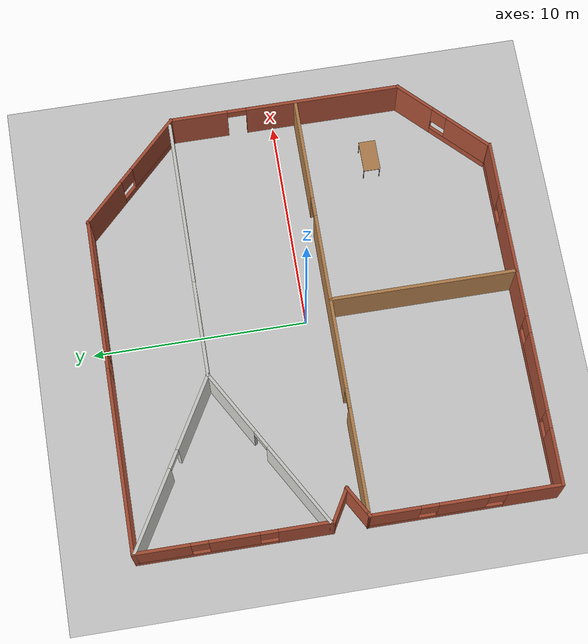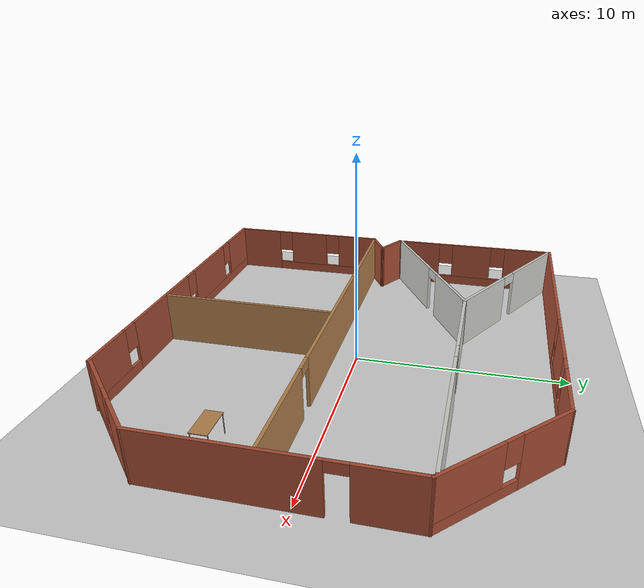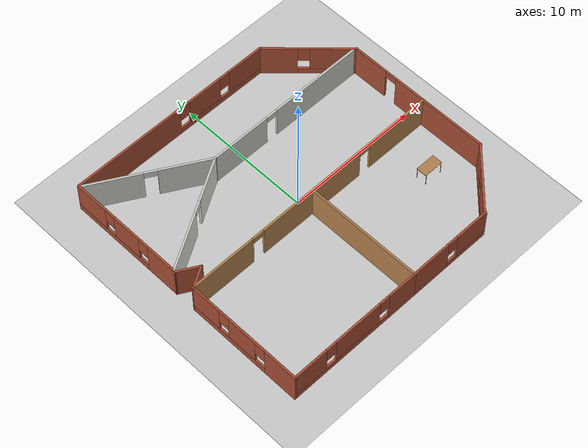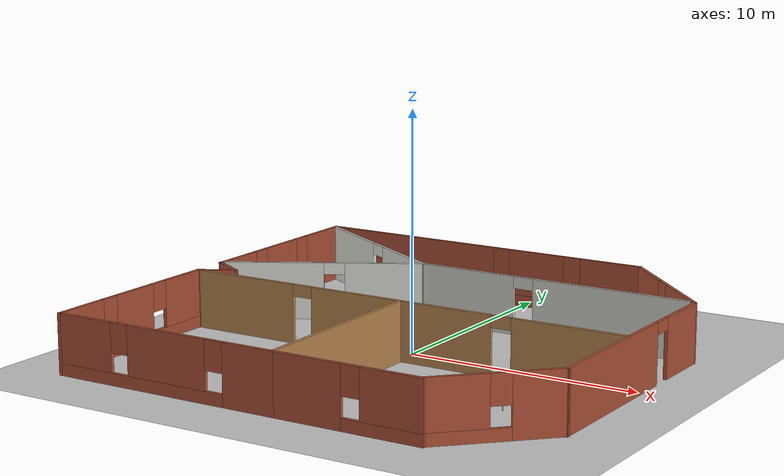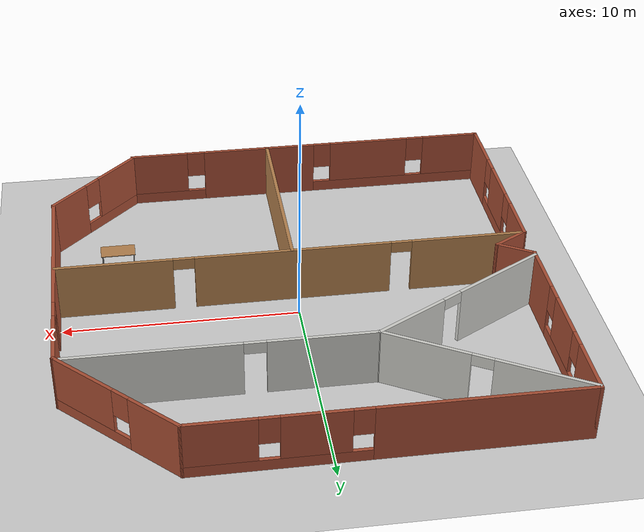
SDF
<sdf version="1.6">
 <world name="myworld">
  <model name="ground_plane">
   <static>1</static>
   <link name="link">
    <collision name="collision">
     <geometry><plane><normal>0 0 1</normal><size>100 100</size></plane></geometry>
     <surface><friction><ode><mu>100</mu><mu2>50</mu2></ode></friction></surface>
    </collision>
    <visual name="visual">
     <cast_shadows>0</cast_shadows>
     <geometry><plane><normal>0 0 1</normal><size>100 100</size></plane></geometry>
     <material>
      <script><uri>file://media/materials/scripts/gazebo.material</uri><name>Gazebo/Grey</name></script>
     </material>
    </visual>
   </link>
  </model>
  <model name="hy_0">
   <pose>0.09983 -0.23319 0 0 -0 0</pose>
   <link name="Wall_12">
    <pose>-6.30136 2.96516 0 0 -0 0.523599</pose>
    <visual name="Wall_12_Visual_0">
     <pose>-2.17493 0 1.25 0 -0 0</pose>
     <geometry><box><size>4.40014 0.15 2.5</size></box></geometry>
     <material>
      <script><uri>file://media/materials/scripts/gazebo.material</uri><name>Gazebo/CeilingTiled</name></script>
      <ambient>0 0.92549 0 1</ambient>
     </material>
     <meta><layer>0</layer></meta>
    </visual>
    <collision name="Wall_12_Collision_0">
     <geometry><box><size>4.40014 0.15 2.5</size></box></geometry>
     <pose>-2.17493 0 1.25 0 -0 0</pose>
    </collision>
    <visual name="Wall_12_Visual_1">
     <pose>2.65007 0 1.25 0 -0 0</pose>
     <geometry><box><size>3.44986 0.15 2.5</size></box></geometry>
     <material>
      <script><uri>file://media/materials/scripts/gazebo.material</uri><name>Gazebo/CeilingTiled</name></script>
      <ambient>0 0.92549 0 1</ambient>
     </material>
     <meta><layer>0</layer></meta>
    </visual>
    <collision name="Wall_12_Collision_1">
     <geometry><box><size>3.44986 0.15 2.5</size></box></geometry>
     <pose>2.65007 0 1.25 0 -0 0</pose>
    </collision>
    <visual name="Wall_12_Visual_2">
     <pose>0.475144 0 2.25 0 -0 0</pose>
     <geometry><box><size>0.9 0.15 0.5</size></box></geometry>
     <material>
      <script><uri>file://media/materials/scripts/gazebo.material</uri><name>Gazebo/CeilingTiled</name></script>
      <ambient>0 0.92549 0 1</ambient>
     </material>
     <meta><layer>0</layer></meta>
    </visual>
    <collision name="Wall_12_Collision_2">
     <geometry><box><size>0.9 0.15 0.5</size></box></geometry>
     <pose>0.475144 0 2.25 0 -0 0</pose>
    </collision>
   </link>
   <link name="Wall_13">
    <pose>3.59755 5.11516 0 0 -0 0</pose>
    <visual name="Wall_13_Visual_0">
     <pose>-3.98409 0 1.25 0 -0 0</pose>
     <geometry><box><size>4.53183 0.15 2.5</size></box></geometry>
     <material>
      <script><uri>file://media/materials/scripts/gazebo.material</uri><name>Gazebo/CeilingTiled</name></script>
      <ambient>0 0.92549 0 1</ambient>
     </material>
     <meta><layer>0</layer></meta>
    </visual>
    <collision name="Wall_13_Collision_0">
     <geometry><box><size>4.53183 0.15 2.5</size></box></geometry>
     <pose>-3.98409 0 1.25 0 -0 0</pose>
    </collision>
    <visual name="Wall_13_Visual_1">
     <pose>2.71591 0 1.25 0 -0 0</pose>
     <geometry><box><size>7.06817 0.15 2.5</size></box></geometry>
     <material>
      <script><uri>file://media/materials/scripts/gazebo.material</uri><name>Gazebo/CeilingTiled</name></script>
      <ambient>0 0.92549 0 1</ambient>
     </material>
     <meta><layer>0</layer></meta>
    </visual>
    <collision name="Wall_13_Collision_1">
     <geometry><box><size>7.06817 0.15 2.5</size></box></geometry>
     <pose>2.71591 0 1.25 0 -0 0</pose>
    </collision>
    <visual name="Wall_13_Visual_2">
     <pose>-1.26817 0 2.25 0 -0 0</pose>
     <geometry><box><size>0.9 0.15 0.5</size></box></geometry>
     <material>
      <script><uri>file://media/materials/scripts/gazebo.material</uri><name>Gazebo/CeilingTiled</name></script>
      <ambient>0 0.92549 0 1</ambient>
     </material>
     <meta><layer>0</layer></meta>
    </visual>
    <collision name="Wall_13_Collision_2">
     <geometry><box><size>0.9 0.15 0.5</size></box></geometry>
     <pose>-1.26817 0 2.25 0 -0 0</pose>
    </collision>
   </link>
   <link name="Wall_15">
    <pose>-6.30136 7.26516 0 0 -0 2.61799</pose>
    <visual name="Wall_15_Visual_0">
     <pose>-2.49521 0 1.25 0 -0 0</pose>
     <geometry><box><size>3.75958 0.15 2.5</size></box></geometry>
     <material>
      <script><uri>file://media/materials/scripts/gazebo.material</uri><name>Gazebo/CeilingTiled</name></script>
      <ambient>0 0.92549 0 1</ambient>
     </material>
     <meta><layer>0</layer></meta>
    </visual>
    <collision name="Wall_15_Collision_0">
     <geometry><box><size>3.75958 0.15 2.5</size></box></geometry>
     <pose>-2.49521 0 1.25 0 -0 0</pose>
    </collision>
    <visual name="Wall_15_Visual_1">
     <pose>2.32979 0 1.25 0 -0 0</pose>
     <geometry><box><size>4.09042 0.15 2.5</size></box></geometry>
     <material>
      <script><uri>file://media/materials/scripts/gazebo.material</uri><name>Gazebo/CeilingTiled</name></script>
      <ambient>0 0.92549 0 1</ambient>
     </material>
     <meta><layer>0</layer></meta>
    </visual>
    <collision name="Wall_15_Collision_1">
     <geometry><box><size>4.09042 0.15 2.5</size></box></geometry>
     <pose>2.32979 0 1.25 0 -0 0</pose>
    </collision>
    <visual name="Wall_15_Visual_2">
     <pose>-0.165419 0 2.25 0 -0 0</pose>
     <geometry><box><size>0.9 0.15 0.5</size></box></geometry>
     <material>
      <script><uri>file://media/materials/scripts/gazebo.material</uri><name>Gazebo/CeilingTiled</name></script>
      <ambient>0 0.92549 0 1</ambient>
     </material>
     <meta><layer>0</layer></meta>
    </visual>
    <collision name="Wall_15_Collision_2">
     <geometry><box><size>0.9 0.15 0.5</size></box></geometry>
     <pose>-0.165419 0 2.25 0 -0 0</pose>
    </collision>
   </link>
   <link name="Wall_17">
    <collision name="Wall_17_Collision">
     <geometry><box><size>8.75 0.15 2.5</size></box></geometry>
     <pose>0 0 1.25 0 -0 0</pose>
    </collision>
    <visual name="Wall_17_Visual">
     <pose>0 0 1.25 0 -0 0</pose>
     <geometry><box><size>8.75 0.15 2.5</size></box></geometry>
     <material>
      <script><uri>file://media/materials/scripts/gazebo.material</uri><name>Gazebo/Wood</name></script>
      <ambient>1 1 1 1</ambient>
     </material>
     <meta><layer>0</layer></meta>
    </visual>
    <pose>0.053129 -5.24053 0 0 0 -1.5708</pose>
   </link>
   <link name="Wall_19">
    <pose>-4.99687 -9.54053 0 0 -0 3.14159</pose>
    <visual name="Wall_19_Visual_0">
     <pose>-3.97378 0 1.25 0 -0 0</pose>
     <geometry><box><size>2.30244 0.15 2.5</size></box></geometry>
     <material>
      <script><uri>file://media/materials/scripts/gazebo.material</uri><name>Gazebo/Bricks</name></script>
      <ambient>1 1 1 1</ambient>
     </material>
     <meta><layer>0</layer></meta>
    </visual>
    <collision name="Wall_19_Collision_0">
     <geometry><box><size>2.30244 0.15 2.5</size></box></geometry>
     <pose>-3.97378 0 1.25 0 -0 0</pose>
    </collision>
    <visual name="Wall_19_Visual_1">
     <pose>1.15122 0 0.25 0 -0 0</pose>
     <geometry><box><size>7.94756 0.15 0.5</size></box></geometry>
     <material>
      <script><uri>file://media/materials/scripts/gazebo.material</uri><name>Gazebo/Bricks</name></script>
      <ambient>1 1 1 1</ambient>
     </material>
     <meta><layer>0</layer></meta>
    </visual>
    <collision name="Wall_19_Collision_1">
     <geometry><box><size>7.94756 0.15 0.5</size></box></geometry>
     <pose>1.15122 0 0.25 0 -0 0</pose>
    </collision>
    <visual name="Wall_19_Visual_2">
     <pose>-0.178896 0 1.5 0 -0 0</pose>
     <geometry><box><size>3.68734 0.15 2</size></box></geometry>
     <material>
      <script><uri>file://media/materials/scripts/gazebo.material</uri><name>Gazebo/Bricks</name></script>
      <ambient>1 1 1 1</ambient>
     </material>
     <meta><layer>0</layer></meta>
    </visual>
    <collision name="Wall_19_Collision_2">
     <geometry><box><size>3.68734 0.15 2</size></box></geometry>
     <pose>-0.178896 0 1.5 0 -0 0</pose>
    </collision>
    <visual name="Wall_19_Visual_3">
     <pose>3.79489 0 1.5 0 -0 0</pose>
     <geometry><box><size>2.66023 0.15 2</size></box></geometry>
     <material>
      <script><uri>file://media/materials/scripts/gazebo.material</uri><name>Gazebo/Bricks</name></script>
      <ambient>1 1 1 1</ambient>
     </material>
     <meta><layer>0</layer></meta>
    </visual>
    <collision name="Wall_19_Collision_3">
     <geometry><box><size>2.66023 0.15 2</size></box></geometry>
     <pose>3.79489 0 1.5 0 -0 0</pose>
    </collision>
    <visual name="Wall_19_Visual_4">
     <pose>-2.42257 0 1.9 0 -0 0</pose>
     <geometry><box><size>0.8 0.15 1.2</size></box></geometry>
     <material>
      <script><uri>file://media/materials/scripts/gazebo.material</uri><name>Gazebo/Bricks</name></script>
      <ambient>1 1 1 1</ambient>
     </material>
     <meta><layer>0</layer></meta>
    </visual>
    <collision name="Wall_19_Collision_4">
     <geometry><box><size>0.8 0.15 1.2</size></box></geometry>
     <pose>-2.42257 0 1.9 0 -0 0</pose>
    </collision>
    <visual name="Wall_19_Visual_5">
     <pose>2.06477 0 1.9 0 -0 0</pose>
     <geometry><box><size>0.8 0.15 1.2</size></box></geometry>
     <material>
      <script><uri>file://media/materials/scripts/gazebo.material</uri><name>Gazebo/Bricks</name></script>
      <ambient>1 1 1 1</ambient>
     </material>
     <meta><layer>0</layer></meta>
    </visual>
    <collision name="Wall_19_Collision_5">
     <geometry><box><size>0.8 0.15 1.2</size></box></geometry>
     <pose>2.06477 0 1.9 0 -0 0</pose>
    </collision>
   </link>
   <link name="Wall_20">
    <pose>-10.0469 -5.24053 0 0 -0 1.5708</pose>
    <visual name="Wall_20_Visual_0">
     <pose>-3.09642 0 1.25 0 -0 0</pose>
     <geometry><box><size>2.55716 0.15 2.5</size></box></geometry>
     <material>
      <script><uri>file://media/materials/scripts/gazebo.material</uri><name>Gazebo/Bricks</name></script>
      <ambient>1 1 1 1</ambient>
     </material>
     <meta><layer>0</layer></meta>
    </visual>
    <collision name="Wall_20_Collision_0">
     <geometry><box><size>2.55716 0.15 2.5</size></box></geometry>
     <pose>-3.09642 0 1.25 0 -0 0</pose>
    </collision>
    <visual name="Wall_20_Visual_1">
     <pose>1.27858 0 0.25 0 -0 0</pose>
     <geometry><box><size>6.19284 0.15 0.5</size></box></geometry>
     <material>
      <script><uri>file://media/materials/scripts/gazebo.material</uri><name>Gazebo/Bricks</name></script>
      <ambient>1 1 1 1</ambient>
     </material>
     <meta><layer>0</layer></meta>
    </visual>
    <collision name="Wall_20_Collision_1">
     <geometry><box><size>6.19284 0.15 0.5</size></box></geometry>
     <pose>1.27858 0 0.25 0 -0 0</pose>
    </collision>
    <visual name="Wall_20_Visual_2">
     <pose>0.108783 0 1.5 0 -0 0</pose>
     <geometry><box><size>2.25324 0.15 2</size></box></geometry>
     <material>
      <script><uri>file://media/materials/scripts/gazebo.material</uri><name>Gazebo/Bricks</name></script>
      <ambient>1 1 1 1</ambient>
     </material>
     <meta><layer>0</layer></meta>
    </visual>
    <collision name="Wall_20_Collision_2">
     <geometry><box><size>2.25324 0.15 2</size></box></geometry>
     <pose>0.108783 0 1.5 0 -0 0</pose>
    </collision>
    <visual name="Wall_20_Visual_3">
     <pose>3.2052 0 1.5 0 -0 0</pose>
     <geometry><box><size>2.3396 0.15 2</size></box></geometry>
     <material>
      <script><uri>file://media/materials/scripts/gazebo.material</uri><name>Gazebo/Bricks</name></script>
      <ambient>1 1 1 1</ambient>
     </material>
     <meta><layer>0</layer></meta>
    </visual>
    <collision name="Wall_20_Collision_3">
     <geometry><box><size>2.3396 0.15 2</size></box></geometry>
     <pose>3.2052 0 1.5 0 -0 0</pose>
    </collision>
    <visual name="Wall_20_Visual_4">
     <pose>-1.41784 0 1.9 0 -0 0</pose>
     <geometry><box><size>0.8 0.15 1.2</size></box></geometry>
     <material>
      <script><uri>file://media/materials/scripts/gazebo.material</uri><name>Gazebo/Bricks</name></script>
      <ambient>1 1 1 1</ambient>
     </material>
     <meta><layer>0</layer></meta>
    </visual>
    <collision name="Wall_20_Collision_4">
     <geometry><box><size>0.8 0.15 1.2</size></box></geometry>
     <pose>-1.41784 0 1.9 0 -0 0</pose>
    </collision>
    <visual name="Wall_20_Visual_5">
     <pose>1.6354 0 1.9 0 -0 0</pose>
     <geometry><box><size>0.8 0.15 1.2</size></box></geometry>
     <material>
      <script><uri>file://media/materials/scripts/gazebo.material</uri><name>Gazebo/Bricks</name></script>
      <ambient>1 1 1 1</ambient>
     </material>
     <meta><layer>0</layer></meta>
    </visual>
    <collision name="Wall_20_Collision_5">
     <geometry><box><size>0.8 0.15 1.2</size></box></geometry>
     <pose>1.6354 0 1.9 0 -0 0</pose>
    </collision>
   </link>
   <link name="Wall_21">
    <collision name="Wall_21_Collision">
     <geometry><box><size>1.75 0.15 2.5</size></box></geometry>
     <pose>0 0 1.25 0 -0 0</pose>
    </collision>
    <visual name="Wall_21_Visual">
     <pose>0 0 1.25 0 -0 0</pose>
     <geometry><box><size>1.75 0.15 2.5</size></box></geometry>
     <material>
      <script><uri>file://media/materials/scripts/gazebo.material</uri><name>Gazebo/Bricks</name></script>
      <ambient>1 1 1 1</ambient>
     </material>
     <meta><layer>0</layer></meta>
    </visual>
    <pose>-9.35405 -0.540533 0 0 -0 0.523599</pose>
   </link>
   <link name="Wall_24">
    <collision name="Wall_24_Collision">
     <geometry><box><size>1.75 0.15 2.5</size></box></geometry>
     <pose>0 0 1.25 0 -0 0</pose>
    </collision>
    <visual name="Wall_24_Visual">
     <pose>0 0 1.25 0 -0 0</pose>
     <geometry><box><size>1.75 0.15 2.5</size></box></geometry>
     <material>
      <script><uri>file://media/materials/scripts/gazebo.material</uri><name>Gazebo/Bricks</name></script>
      <ambient>1 1 1 1</ambient>
     </material>
     <meta><layer>0</layer></meta>
    </visual>
    <pose>-9.35405 0.259467 0 0 -0 2.61799</pose>
   </link>
   <link name="Wall_25">
    <pose>-10.0469 5.08447 0 0 -0 1.5708</pose>
    <visual name="Wall_25_Visual_0">
     <pose>-3.23269 0 1.25 0 -0 0</pose>
     <geometry><box><size>2.53463 0.15 2.5</size></box></geometry>
     <material>
      <script><uri>file://media/materials/scripts/gazebo.material</uri><name>Gazebo/Bricks</name></script>
      <ambient>1 1 1 1</ambient>
     </material>
     <meta><layer>0</layer></meta>
    </visual>
    <collision name="Wall_25_Collision_0">
     <geometry><box><size>2.53463 0.15 2.5</size></box></geometry>
     <pose>-3.23269 0 1.25 0 -0 0</pose>
    </collision>
    <visual name="Wall_25_Visual_1">
     <pose>1.26731 0 0.25 0 -0 0</pose>
     <geometry><box><size>6.46537 0.15 0.5</size></box></geometry>
     <material>
      <script><uri>file://media/materials/scripts/gazebo.material</uri><name>Gazebo/Bricks</name></script>
      <ambient>1 1 1 1</ambient>
     </material>
     <meta><layer>0</layer></meta>
    </visual>
    <collision name="Wall_25_Collision_1">
     <geometry><box><size>6.46537 0.15 0.5</size></box></geometry>
     <pose>1.26731 0 0.25 0 -0 0</pose>
    </collision>
    <visual name="Wall_25_Visual_2">
     <pose>-0.038749 0 1.5 0 -0 0</pose>
     <geometry><box><size>2.25324 0.15 2</size></box></geometry>
     <material>
      <script><uri>file://media/materials/scripts/gazebo.material</uri><name>Gazebo/Bricks</name></script>
      <ambient>1 1 1 1</ambient>
     </material>
     <meta><layer>0</layer></meta>
    </visual>
    <collision name="Wall_25_Collision_2">
     <geometry><box><size>2.25324 0.15 2</size></box></geometry>
     <pose>-0.038749 0 1.5 0 -0 0</pose>
    </collision>
    <visual name="Wall_25_Visual_3">
     <pose>3.19394 0 1.5 0 -0 0</pose>
     <geometry><box><size>2.61213 0.15 2</size></box></geometry>
     <material>
      <script><uri>file://media/materials/scripts/gazebo.material</uri><name>Gazebo/Bricks</name></script>
      <ambient>1 1 1 1</ambient>
     </material>
     <meta><layer>0</layer></meta>
    </visual>
    <collision name="Wall_25_Collision_3">
     <geometry><box><size>2.61213 0.15 2</size></box></geometry>
     <pose>3.19394 0 1.5 0 -0 0</pose>
    </collision>
    <visual name="Wall_25_Visual_4">
     <pose>-1.56537 0 1.9 0 -0 0</pose>
     <geometry><box><size>0.8 0.15 1.2</size></box></geometry>
     <material>
      <script><uri>file://media/materials/scripts/gazebo.material</uri><name>Gazebo/Bricks</name></script>
      <ambient>1 1 1 1</ambient>
     </material>
     <meta><layer>0</layer></meta>
    </visual>
    <collision name="Wall_25_Collision_4">
     <geometry><box><size>0.8 0.15 1.2</size></box></geometry>
     <pose>-1.56537 0 1.9 0 -0 0</pose>
    </collision>
    <visual name="Wall_25_Visual_5">
     <pose>1.48787 0 1.9 0 -0 0</pose>
     <geometry><box><size>0.8 0.15 1.2</size></box></geometry>
     <material>
      <script><uri>file://media/materials/scripts/gazebo.material</uri><name>Gazebo/Bricks</name></script>
      <ambient>1 1 1 1</ambient>
     </material>
     <meta><layer>0</layer></meta>
    </visual>
    <collision name="Wall_25_Collision_5">
     <geometry><box><size>0.8 0.15 1.2</size></box></geometry>
     <pose>1.48787 0 1.9 0 -0 0</pose>
    </collision>
   </link>
   <link name="Wall_26">
    <pose>-2.24687 9.50947 0 0 -0 0</pose>
    <visual name="Wall_26_Visual_0">
     <pose>-3.58997 0 1.25 0 -0 0</pose>
     <geometry><box><size>8.57005 0.15 2.5</size></box></geometry>
     <material>
      <script><uri>file://media/materials/scripts/gazebo.material</uri><name>Gazebo/Bricks</name></script>
      <ambient>1 1 1 1</ambient>
     </material>
     <meta><layer>0</layer></meta>
    </visual>
    <collision name="Wall_26_Collision_0">
     <geometry><box><size>8.57005 0.15 2.5</size></box></geometry>
     <pose>-3.58997 0 1.25 0 -0 0</pose>
    </collision>
    <visual name="Wall_26_Visual_1">
     <pose>4.28503 0 0.25 0 -0 0</pose>
     <geometry><box><size>7.17995 0.15 0.5</size></box></geometry>
     <material>
      <script><uri>file://media/materials/scripts/gazebo.material</uri><name>Gazebo/Bricks</name></script>
      <ambient>1 1 1 1</ambient>
     </material>
     <meta><layer>0</layer></meta>
    </visual>
    <collision name="Wall_26_Collision_1">
     <geometry><box><size>7.17995 0.15 0.5</size></box></geometry>
     <pose>4.28503 0 0.25 0 -0 0</pose>
    </collision>
    <visual name="Wall_26_Visual_2">
     <pose>2.83747 0 1.5 0 -0 0</pose>
     <geometry><box><size>2.68484 0.15 2</size></box></geometry>
     <material>
      <script><uri>file://media/materials/scripts/gazebo.material</uri><name>Gazebo/Bricks</name></script>
      <ambient>1 1 1 1</ambient>
     </material>
     <meta><layer>0</layer></meta>
    </visual>
    <collision name="Wall_26_Collision_2">
     <geometry><box><size>2.68484 0.15 2</size></box></geometry>
     <pose>2.83747 0 1.5 0 -0 0</pose>
    </collision>
    <visual name="Wall_26_Visual_3">
     <pose>6.42744 0 1.5 0 -0 0</pose>
     <geometry><box><size>2.89511 0.15 2</size></box></geometry>
     <material>
      <script><uri>file://media/materials/scripts/gazebo.material</uri><name>Gazebo/Bricks</name></script>
      <ambient>1 1 1 1</ambient>
     </material>
     <meta><layer>0</layer></meta>
    </visual>
    <collision name="Wall_26_Collision_3">
     <geometry><box><size>2.89511 0.15 2</size></box></geometry>
     <pose>6.42744 0 1.5 0 -0 0</pose>
    </collision>
    <visual name="Wall_26_Visual_4">
     <pose>1.09505 0 1.9 0 -0 0</pose>
     <geometry><box><size>0.8 0.15 1.2</size></box></geometry>
     <material>
      <script><uri>file://media/materials/scripts/gazebo.material</uri><name>Gazebo/Bricks</name></script>
      <ambient>1 1 1 1</ambient>
     </material>
     <meta><layer>0</layer></meta>
    </visual>
    <collision name="Wall_26_Collision_4">
     <geometry><box><size>0.8 0.15 1.2</size></box></geometry>
     <pose>1.09505 0 1.9 0 -0 0</pose>
    </collision>
    <visual name="Wall_26_Visual_5">
     <pose>4.57989 0 1.9 0 -0 0</pose>
     <geometry><box><size>0.8 0.15 1.2</size></box></geometry>
     <material>
      <script><uri>file://media/materials/scripts/gazebo.material</uri><name>Gazebo/Bricks</name></script>
      <ambient>1 1 1 1</ambient>
     </material>
     <meta><layer>0</layer></meta>
    </visual>
    <collision name="Wall_26_Collision_5">
     <geometry><box><size>0.8 0.15 1.2</size></box></geometry>
     <pose>4.57989 0 1.9 0 -0 0</pose>
    </collision>
   </link>
   <link name="Wall_27">
    <pose>7.79819 7.2644 0 0 0 -0.785398</pose>
    <visual name="Wall_27_Visual_0">
     <pose>-1.97639 0 1.25 0 -0 0</pose>
     <geometry><box><size>2.54722 0.15 2.5</size></box></geometry>
     <material>
      <script><uri>file://media/materials/scripts/gazebo.material</uri><name>Gazebo/Bricks</name></script>
      <ambient>1 1 1 1</ambient>
     </material>
     <meta><layer>0</layer></meta>
    </visual>
    <collision name="Wall_27_Collision_0">
     <geometry><box><size>2.54722 0.15 2.5</size></box></geometry>
     <pose>-1.97639 0 1.25 0 -0 0</pose>
    </collision>
    <visual name="Wall_27_Visual_1">
     <pose>1.27361 0 0.25 0 -0 0</pose>
     <geometry><box><size>3.95278 0.15 0.5</size></box></geometry>
     <material>
      <script><uri>file://media/materials/scripts/gazebo.material</uri><name>Gazebo/Bricks</name></script>
      <ambient>1 1 1 1</ambient>
     </material>
     <meta><layer>0</layer></meta>
    </visual>
    <collision name="Wall_27_Collision_1">
     <geometry><box><size>3.95278 0.15 0.5</size></box></geometry>
     <pose>1.27361 0 0.25 0 -0 0</pose>
    </collision>
    <visual name="Wall_27_Visual_2">
     <pose>1.67361 0 1.5 0 -0 0</pose>
     <geometry><box><size>3.15278 0.15 2</size></box></geometry>
     <material>
      <script><uri>file://media/materials/scripts/gazebo.material</uri><name>Gazebo/Bricks</name></script>
      <ambient>1 1 1 1</ambient>
     </material>
     <meta><layer>0</layer></meta>
    </visual>
    <collision name="Wall_27_Collision_2">
     <geometry><box><size>3.15278 0.15 2</size></box></geometry>
     <pose>1.67361 0 1.5 0 -0 0</pose>
    </collision>
    <visual name="Wall_27_Visual_3">
     <pose>-0.302777 0 1.9 0 -0 0</pose>
     <geometry><box><size>0.8 0.15 1.2</size></box></geometry>
     <material>
      <script><uri>file://media/materials/scripts/gazebo.material</uri><name>Gazebo/Bricks</name></script>
      <ambient>1 1 1 1</ambient>
     </material>
     <meta><layer>0</layer></meta>
    </visual>
    <collision name="Wall_27_Collision_3">
     <geometry><box><size>0.8 0.15 1.2</size></box></geometry>
     <pose>-0.302777 0 1.9 0 -0 0</pose>
    </collision>
   </link>
   <link name="Wall_28">
    <pose>10.0433 -0.405662 0 0 0 -1.5708</pose>
    <visual name="Wall_28_Visual_0">
     <pose>-4.12781 0 1.25 0 -0 0</pose>
     <geometry><box><size>2.74438 0.15 2.5</size></box></geometry>
     <material>
      <script><uri>file://media/materials/scripts/gazebo.material</uri><name>Gazebo/Bricks</name></script>
      <ambient>1 1 1 1</ambient>
     </material>
     <meta><layer>0</layer></meta>
    </visual>
    <collision name="Wall_28_Collision_0">
     <geometry><box><size>2.74438 0.15 2.5</size></box></geometry>
     <pose>-4.12781 0 1.25 0 -0 0</pose>
    </collision>
    <visual name="Wall_28_Visual_1">
     <pose>1.82219 0 1.25 0 -0 0</pose>
     <geometry><box><size>7.35562 0.15 2.5</size></box></geometry>
     <material>
      <script><uri>file://media/materials/scripts/gazebo.material</uri><name>Gazebo/Bricks</name></script>
      <ambient>1 1 1 1</ambient>
     </material>
     <meta><layer>0</layer></meta>
    </visual>
    <collision name="Wall_28_Collision_1">
     <geometry><box><size>7.35562 0.15 2.5</size></box></geometry>
     <pose>1.82219 0 1.25 0 -0 0</pose>
    </collision>
    <visual name="Wall_28_Visual_2">
     <pose>-2.30562 0 2.25 0 -0 0</pose>
     <geometry><box><size>0.9 0.15 0.5</size></box></geometry>
     <material>
      <script><uri>file://media/materials/scripts/gazebo.material</uri><name>Gazebo/Bricks</name></script>
      <ambient>1 1 1 1</ambient>
     </material>
     <meta><layer>0</layer></meta>
    </visual>
    <collision name="Wall_28_Collision_2">
     <geometry><box><size>0.9 0.15 0.5</size></box></geometry>
     <pose>-2.30562 0 2.25 0 -0 0</pose>
    </collision>
   </link>
   <link name="Wall_29">
    <pose>8.24014 -7.63378 0 0 0 -2.35619</pose>
    <visual name="Wall_29_Visual_0">
     <pose>-1.58309 0 1.25 0 -0 0</pose>
     <geometry><box><size>2.08382 0.15 2.5</size></box></geometry>
     <material>
      <script><uri>file://media/materials/scripts/gazebo.material</uri><name>Gazebo/Bricks</name></script>
      <ambient>1 1 1 1</ambient>
     </material>
     <meta><layer>0</layer></meta>
    </visual>
    <collision name="Wall_29_Collision_0">
     <geometry><box><size>2.08382 0.15 2.5</size></box></geometry>
     <pose>-1.58309 0 1.25 0 -0 0</pose>
    </collision>
    <visual name="Wall_29_Visual_1">
     <pose>1.04191 0 0.25 0 -0 0</pose>
     <geometry><box><size>3.16618 0.15 0.5</size></box></geometry>
     <material>
      <script><uri>file://media/materials/scripts/gazebo.material</uri><name>Gazebo/Bricks</name></script>
      <ambient>1 1 1 1</ambient>
     </material>
     <meta><layer>0</layer></meta>
    </visual>
    <collision name="Wall_29_Collision_1">
     <geometry><box><size>3.16618 0.15 0.5</size></box></geometry>
     <pose>1.04191 0 0.25 0 -0 0</pose>
    </collision>
    <visual name="Wall_29_Visual_2">
     <pose>1.44191 0 1.5 0 -0 0</pose>
     <geometry><box><size>2.36618 0.15 2</size></box></geometry>
     <material>
      <script><uri>file://media/materials/scripts/gazebo.material</uri><name>Gazebo/Bricks</name></script>
      <ambient>1 1 1 1</ambient>
     </material>
     <meta><layer>0</layer></meta>
    </visual>
    <collision name="Wall_29_Collision_2">
     <geometry><box><size>2.36618 0.15 2</size></box></geometry>
     <pose>1.44191 0 1.5 0 -0 0</pose>
    </collision>
    <visual name="Wall_29_Visual_3">
     <pose>-0.141178 0 1.9 0 -0 0</pose>
     <geometry><box><size>0.8 0.15 1.2</size></box></geometry>
     <material>
      <script><uri>file://media/materials/scripts/gazebo.material</uri><name>Gazebo/Bricks</name></script>
      <ambient>1 1 1 1</ambient>
     </material>
     <meta><layer>0</layer></meta>
    </visual>
    <collision name="Wall_29_Collision_3">
     <geometry><box><size>0.8 0.15 1.2</size></box></geometry>
     <pose>-0.141178 0 1.9 0 -0 0</pose>
    </collision>
   </link>
   <link name="Wall_31">
    <pose>3.22813 -9.54053 0 0 -0 0</pose>
    <visual name="Wall_31_Visual_0">
     <pose>-1.71924 0 1.25 0 -0 0</pose>
     <geometry><box><size>3.06152 0.15 2.5</size></box></geometry>
     <material>
      <script><uri>file://media/materials/scripts/gazebo.material</uri><name>Gazebo/Bricks</name></script>
      <ambient>1 1 1 1</ambient>
     </material>
     <meta><layer>0</layer></meta>
    </visual>
    <collision name="Wall_31_Collision_0">
     <geometry><box><size>3.06152 0.15 2.5</size></box></geometry>
     <pose>-1.71924 0 1.25 0 -0 0</pose>
    </collision>
    <visual name="Wall_31_Visual_1">
     <pose>1.53076 0 0.25 0 -0 0</pose>
     <geometry><box><size>3.43848 0.15 0.5</size></box></geometry>
     <material>
      <script><uri>file://media/materials/scripts/gazebo.material</uri><name>Gazebo/Bricks</name></script>
      <ambient>1 1 1 1</ambient>
     </material>
     <meta><layer>0</layer></meta>
    </visual>
    <collision name="Wall_31_Collision_1">
     <geometry><box><size>3.43848 0.15 0.5</size></box></geometry>
     <pose>1.53076 0 0.25 0 -0 0</pose>
    </collision>
    <visual name="Wall_31_Visual_2">
     <pose>1.93076 0 1.5 0 -0 0</pose>
     <geometry><box><size>2.63848 0.15 2</size></box></geometry>
     <material>
      <script><uri>file://media/materials/scripts/gazebo.material</uri><name>Gazebo/Bricks</name></script>
      <ambient>1 1 1 1</ambient>
     </material>
     <meta><layer>0</layer></meta>
    </visual>
    <collision name="Wall_31_Collision_2">
     <geometry><box><size>2.63848 0.15 2</size></box></geometry>
     <pose>1.93076 0 1.5 0 -0 0</pose>
    </collision>
    <visual name="Wall_31_Visual_3">
     <pose>0.211523 0 1.9 0 -0 0</pose>
     <geometry><box><size>0.8 0.15 1.2</size></box></geometry>
     <material>
      <script><uri>file://media/materials/scripts/gazebo.material</uri><name>Gazebo/Bricks</name></script>
      <ambient>1 1 1 1</ambient>
     </material>
     <meta><layer>0</layer></meta>
    </visual>
    <collision name="Wall_31_Collision_3">
     <geometry><box><size>0.8 0.15 1.2</size></box></geometry>
     <pose>0.211523 0 1.9 0 -0 0</pose>
    </collision>
   </link>
   <link name="Wall_7">
    <pose>0.05386 -0.903715 0 0 -0 0</pose>
    <visual name="Wall_7_Visual_0">
     <pose>-7.57996 0 1.25 0 -0 0</pose>
     <geometry><box><size>4.84008 0.15 2.5</size></box></geometry>
     <material>
      <script><uri>file://media/materials/scripts/gazebo.material</uri><name>Gazebo/Wood</name></script>
      <ambient>1 1 1 1</ambient>
     </material>
     <meta><layer>0</layer></meta>
    </visual>
    <collision name="Wall_7_Collision_0">
     <geometry><box><size>4.84008 0.15 2.5</size></box></geometry>
     <pose>-7.57996 0 1.25 0 -0 0</pose>
    </collision>
    <visual name="Wall_7_Visual_1">
     <pose>-0.060669 0 1.25 0 -0 0</pose>
     <geometry><box><size>8.3985 0.15 2.5</size></box></geometry>
     <material>
      <script><uri>file://media/materials/scripts/gazebo.material</uri><name>Gazebo/Wood</name></script>
      <ambient>1 1 1 1</ambient>
     </material>
     <meta><layer>0</layer></meta>
    </visual>
    <collision name="Wall_7_Collision_1">
     <geometry><box><size>8.3985 0.15 2.5</size></box></geometry>
     <pose>-0.060669 0 1.25 0 -0 0</pose>
    </collision>
    <visual name="Wall_7_Visual_2">
     <pose>7.51929 0 1.25 0 -0 0</pose>
     <geometry><box><size>4.96142 0.15 2.5</size></box></geometry>
     <material>
      <script><uri>file://media/materials/scripts/gazebo.material</uri><name>Gazebo/Wood</name></script>
      <ambient>1 1 1 1</ambient>
     </material>
     <meta><layer>0</layer></meta>
    </visual>
    <collision name="Wall_7_Collision_2">
     <geometry><box><size>4.96142 0.15 2.5</size></box></geometry>
     <pose>7.51929 0 1.25 0 -0 0</pose>
    </collision>
    <visual name="Wall_7_Visual_3">
     <pose>-4.70992 0 2.25 0 -0 0</pose>
     <geometry><box><size>0.9 0.15 0.5</size></box></geometry>
     <material>
      <script><uri>file://media/materials/scripts/gazebo.material</uri><name>Gazebo/Wood</name></script>
      <ambient>1 1 1 1</ambient>
     </material>
     <meta><layer>0</layer></meta>
    </visual>
    <collision name="Wall_7_Collision_3">
     <geometry><box><size>0.9 0.15 0.5</size></box></geometry>
     <pose>-4.70992 0 2.25 0 -0 0</pose>
    </collision>
    <visual name="Wall_7_Visual_4">
     <pose>4.58858 0 2.25 0 -0 0</pose>
     <geometry><box><size>0.9 0.15 0.5</size></box></geometry>
     <material>
      <script><uri>file://media/materials/scripts/gazebo.material</uri><name>Gazebo/Wood</name></script>
      <ambient>1 1 1 1</ambient>
     </material>
     <meta><layer>0</layer></meta>
    </visual>
    <collision name="Wall_7_Collision_4">
     <geometry><box><size>0.9 0.15 0.5</size></box></geometry>
     <pose>4.58858 0 2.25 0 -0 0</pose>
    </collision>
   </link>
   <static>1</static>
  </model>
  <model name="table_clone">
   <static>1</static>
   <link name="link">
    <collision name="surface">
     <pose>0 0 1 0 -0 0</pose>
     <geometry><box><size>1.5 0.8 0.03</size></box></geometry>
     <surface><friction><ode><mu>0.6</mu><mu2>0.6</mu2></ode></friction></surface>
    </collision>
    <visual name="visual1">
     <pose>0 0 1 0 -0 0</pose>
     <geometry><box><size>1.5 0.8 0.03</size></box></geometry>
     <material>
      <script><uri>file://media/materials/scripts/gazebo.material</uri><name>Gazebo/Wood</name></script>
     </material>
    </visual>
    <collision name="front_left_leg">
     <pose>0.68 0.38 0.5 0 -0 0</pose>
     <geometry><cylinder><radius>0.02</radius><length>1</length></cylinder></geometry>
    </collision>
    <visual name="front_left_leg">
     <pose>0.68 0.38 0.5 0 -0 0</pose>
     <geometry><cylinder><radius>0.02</radius><length>1</length></cylinder></geometry>
     <material>
      <script><uri>file://media/materials/scripts/gazebo.material</uri><name>Gazebo/Grey</name></script>
     </material>
    </visual>
    <collision name="front_right_leg">
     <pose>0.68 -0.38 0.5 0 -0 0</pose>
     <geometry><cylinder><radius>0.02</radius><length>1</length></cylinder></geometry>
    </collision>
    <visual name="front_right_leg">
     <pose>0.68 -0.38 0.5 0 -0 0</pose>
     <geometry><cylinder><radius>0.02</radius><length>1</length></cylinder></geometry>
     <material>
      <script><uri>file://media/materials/scripts/gazebo.material</uri><name>Gazebo/Grey</name></script>
     </material>
    </visual>
    <collision name="back_right_leg">
     <pose>-0.68 -0.38 0.5 0 -0 0</pose>
     <geometry><cylinder><radius>0.02</radius><length>1</length></cylinder></geometry>
    </collision>
    <visual name="back_right_leg">
     <pose>-0.68 -0.38 0.5 0 -0 0</pose>
     <geometry><cylinder><radius>0.02</radius><length>1</length></cylinder></geometry>
     <material>
      <script><uri>file://media/materials/scripts/gazebo.material</uri><name>Gazebo/Grey</name></script>
     </material>
    </visual>
    <collision name="back_left_leg">
     <pose>-0.68 0.38 0.5 0 -0 0</pose>
     <geometry><cylinder><radius>0.02</radius><length>1</length></cylinder></geometry>
    </collision>
    <visual name="back_left_leg">
     <pose>-0.68 0.38 0.5 0 -0 0</pose>
     <geometry><cylinder><radius>0.02</radius><length>1</length></cylinder></geometry>
     <material>
      <script><uri>file://media/materials/scripts/gazebo.material</uri><name>Gazebo/Grey</name></script>
     </material>
    </visual>
   </link>
   <pose>7.47206 -4.28486 0 0 -0 0</pose>
  </model>
 </world>
</sdf>
